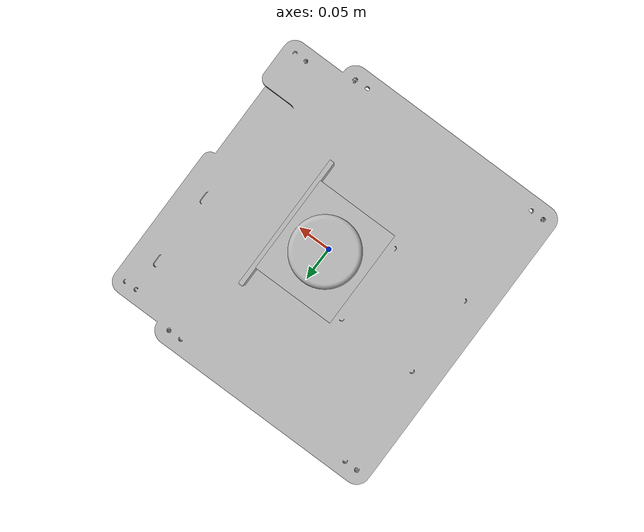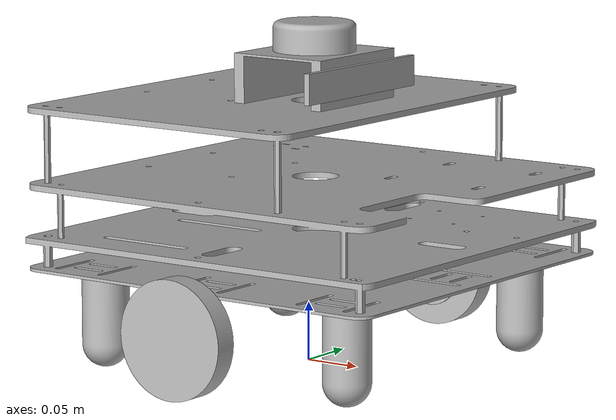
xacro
<?xml version="1.0" ?>
<robot name="testbed_v5" xmlns:xacro="http://www.ros.org/wiki/xacro">

<xacro:include filename="$(find testbed_v5_description)/urdf/materials.xacro" />
<xacro:include filename="$(find testbed_v5_description)/urdf/testbed_v5.trans" />
<xacro:include filename="$(find testbed_v5_description)/urdf/testbed_v5.gazebo" />
<xacro:include filename="$(find testbed_v5_description)/urdf/testbed_v5_plugins.gazebo" />

<link name="base_link">
  <inertial>
    <origin xyz="-0.009417108194433796 0.007391324547363638 0.1456606164886188" rpy="0 0 0"/>
    <mass value="5.234348580602515"/>

    <inertia ixx="0.067679" iyy="0.06101" izz="0.104014" ixy="-0.000698" iyz="5.6e-05" ixz="0.003912"/>

  </inertial>
  <visual>
    <origin xyz="0 0 0" rpy="0 0 0"/>
    <geometry>
      <mesh filename="package://testbed_v5_description/meshes/base_link.stl" scale="0.001 0.001 0.001"/>
    </geometry>
    <material name="silver"/>
  </visual>
  <collision>
    <origin xyz="0 0 0" rpy="0 0 0"/>
    <geometry>
      <mesh filename="package://testbed_v5_description/meshes/base_link.stl" scale="0.001 0.001 0.001"/>
    </geometry>
  </collision>
</link>

<link name="camera_1">
  <inertial>
    <origin xyz="0.002500497082887458 -1.5695143071488282e-07 1.4622628566329787e-07" rpy="0 0 0"/>
    <mass value="0.02683089777381168"/>
    <inertia ixx="5.2e-05" iyy="2e-06" izz="5e-05" ixy="-0.0" iyz="0.0" ixz="0.0"/>
  </inertial>
  <visual>
    <origin xyz="-0.046628 -0.00577 -0.243503" rpy="0 0 0"/>
    <geometry>
      <mesh filename="package://testbed_v5_description/meshes/camera_1.stl" scale="0.001 0.001 0.001"/>
    </geometry>
    <material name="silver"/>
  </visual>
  <collision>
    <origin xyz="-0.046628 -0.00577 -0.243503" rpy="0 0 0"/>
    <geometry>
      <mesh filename="package://testbed_v5_description/meshes/camera_1.stl" scale="0.001 0.001 0.001"/>
    </geometry>
  </collision>
</link>

<link name="lidar_1">
  <inertial>
    <origin xyz="2.6024096270072135e-07 -1.5695143085713015e-07 0.012363569052544154" rpy="0 0 0"/>
    <mass value="0.13119534142939002"/>
    <inertia ixx="4.6e-05" iyy="4.6e-05" izz="8e-05" ixy="-0.0" iyz="0.0" ixz="0.0"/>
  </inertial>
  <visual>
    <origin xyz="-0.001943 -0.00577 -0.264503" rpy="0 0 0"/>
    <geometry>
      <mesh filename="package://testbed_v5_description/meshes/lidar_1.stl" scale="0.001 0.001 0.001"/>
    </geometry>
    <material name="silver"/>
  </visual>
  <collision>
    <origin xyz="-0.001943 -0.00577 -0.264503" rpy="0 0 0"/>
    <geometry>
      <mesh filename="package://testbed_v5_description/meshes/lidar_1.stl" scale="0.001 0.001 0.001"/>
    </geometry>
  </collision>
</link>

<link name="top_stand_1">
  <inertial>
    <origin xyz="0.03967798450114855 -1.3551081426969001e-05 0.023834533396327046" rpy="0 0 0"/>
    <mass value="0.2768438331116585"/>
    <inertia ixx="0.000302" iyy="0.00044" izz="0.000645" ixy="0.0" iyz="0.0" ixz="-0.0"/>
  </inertial>
  <visual>
    <origin xyz="0.037742 -0.005793 -0.222503" rpy="0 0 0"/>
    <geometry>
      <mesh filename="package://testbed_v5_description/meshes/top_stand_1.stl" scale="0.001 0.001 0.001"/>
    </geometry>
    <material name="silver"/>
  </visual>
  <collision>
    <origin xyz="0.037742 -0.005793 -0.222503" rpy="0 0 0"/>
    <geometry>
      <mesh filename="package://testbed_v5_description/meshes/top_stand_1.stl" scale="0.001 0.001 0.001"/>
    </geometry>
  </collision>
</link>

<link name="left_wheel_1">
  <inertial>
    <origin xyz="4.820423154623318e-07 0.014930421756785828 1.462262926854585e-07" rpy="0 0 0"/>
    <mass value="0.14690578122037995"/>
    <inertia ixx="9.6e-05" iyy="0.000183" izz="9.6e-05" ixy="-0.0" iyz="0.0" ixz="-0.0"/>
  </inertial>
  <visual>
    <origin xyz="-0.00203 -0.178793 -0.050003" rpy="0 0 0"/>
    <geometry>
      <mesh filename="package://testbed_v5_description/meshes/left_wheel_1.stl" scale="0.001 0.001 0.001"/>
    </geometry>
    <material name="silver"/>
  </visual>
  <collision>
    <origin xyz="-0.00203 -0.178793 -0.050003" rpy="0 0 0"/>
    <geometry>
      <mesh filename="package://testbed_v5_description/meshes/left_wheel_1.stl" scale="0.001 0.001 0.001"/>
    </geometry>
  </collision>
</link>

<link name="right_wheel_1">
  <inertial>
    <origin xyz="4.82042336067811e-07 -0.014929739834248806 1.4622628940336169e-07" rpy="0 0 0"/>
    <mass value="0.14690578122037973"/>
    <inertia ixx="9.6e-05" iyy="0.000183" izz="9.6e-05" ixy="-0.0" iyz="0.0" ixz="-0.0"/>
  </inertial>
  <visual>
    <origin xyz="-0.00203 0.167207 -0.050003" rpy="0 0 0"/>
    <geometry>
      <mesh filename="package://testbed_v5_description/meshes/right_wheel_1.stl" scale="0.001 0.001 0.001"/>
    </geometry>
    <material name="silver"/>
  </visual>
  <collision>
    <origin xyz="-0.00203 0.167207 -0.050003" rpy="0 0 0"/>
    <geometry>
      <mesh filename="package://testbed_v5_description/meshes/right_wheel_1.stl" scale="0.001 0.001 0.001"/>
    </geometry>
  </collision>
</link>

<link name="front_caster_2">
  <inertial>
    <origin xyz="2.3399034404514296e-08 3.409612755883584e-07 -0.038760384632581794" rpy="0 0 0"/>
    <mass value="0.8239907441912069"/>
    <inertia ixx="0.000498" iyy="0.000498" izz="0.000159" ixy="-0.0" iyz="0.0" ixz="-0.0"/>
  </inertial>
  <visual>
    <origin xyz="-0.127258 0.121257 -0.084003" rpy="0 0 0"/>
    <geometry>
      <mesh filename="package://testbed_v5_description/meshes/front_caster_2.stl" scale="0.001 0.001 0.001"/>
    </geometry>
    <material name="silver"/>
  </visual>
  <collision>
    <origin xyz="-0.127258 0.121257 -0.084003" rpy="0 0 0"/>
    <geometry>
      <mesh filename="package://testbed_v5_description/meshes/front_caster_2.stl" scale="0.001 0.001 0.001"/>
    </geometry>
  </collision>
</link>

<link name="front_caster_1">
  <inertial>
    <origin xyz="2.3399032877957637e-08 3.409612712723664e-07 -0.038760384632579574" rpy="0 0 0"/>
    <mass value="0.8239907441912069"/>
    <inertia ixx="0.000498" iyy="0.000498" izz="0.000159" ixy="-0.0" iyz="-0.0" ixz="-0.0"/>
  </inertial>
  <visual>
    <origin xyz="-0.127258 -0.132843 -0.084003" rpy="0 0 0"/>
    <geometry>
      <mesh filename="package://testbed_v5_description/meshes/front_caster_1.stl" scale="0.001 0.001 0.001"/>
    </geometry>
    <material name="silver"/>
  </visual>
  <collision>
    <origin xyz="-0.127258 -0.132843 -0.084003" rpy="0 0 0"/>
    <geometry>
      <mesh filename="package://testbed_v5_description/meshes/front_caster_1.stl" scale="0.001 0.001 0.001"/>
    </geometry>
  </collision>
</link>

<link name="back_caster_1">
  <inertial>
    <origin xyz="2.3399038776017456e-08 3.4096127132787757e-07 -0.038760384632579255" rpy="0 0 0"/>
    <mass value="0.8239907441912067"/>
    <inertia ixx="0.000498" iyy="0.000498" izz="0.000159" ixy="-0.0" iyz="0.0" ixz="-0.0"/>
  </inertial>
  <visual>
    <origin xyz="0.122742 -0.132843 -0.084003" rpy="0 0 0"/>
    <geometry>
      <mesh filename="package://testbed_v5_description/meshes/back_caster_1.stl" scale="0.001 0.001 0.001"/>
    </geometry>
    <material name="silver"/>
  </visual>
  <collision>
    <origin xyz="0.122742 -0.132843 -0.084003" rpy="0 0 0"/>
    <geometry>
      <mesh filename="package://testbed_v5_description/meshes/back_caster_1.stl" scale="0.001 0.001 0.001"/>
    </geometry>
  </collision>
</link>

<link name="back_caster_2">
  <inertial>
    <origin xyz="2.3399040469107568e-08 3.4096127535243603e-07 -0.0387603846325812" rpy="0 0 0"/>
    <mass value="0.8239907441912067"/>
    <inertia ixx="0.000498" iyy="0.000498" izz="0.000159" ixy="-0.0" iyz="0.0" ixz="-0.0"/>
  </inertial>
  <visual>
    <origin xyz="0.122742 0.121257 -0.084003" rpy="0 0 0"/>
    <geometry>
      <mesh filename="package://testbed_v5_description/meshes/back_caster_2.stl" scale="0.001 0.001 0.001"/>
    </geometry>
    <material name="silver"/>
  </visual>
  <collision>
    <origin xyz="0.122742 0.121257 -0.084003" rpy="0 0 0"/>
    <geometry>
      <mesh filename="package://testbed_v5_description/meshes/back_caster_2.stl" scale="0.001 0.001 0.001"/>
    </geometry>
  </collision>
</link>

<joint name="Rigid 46" type="fixed">
  <origin xyz="0.08437 -2.3e-05 0.021" rpy="0 0 0"/>
  <parent link="top_stand_1"/>
  <child link="camera_1"/>
</joint>

<joint name="Rigid 47" type="fixed">
  <origin xyz="0.039685 -2.3e-05 0.042" rpy="0 0 0"/>
  <parent link="top_stand_1"/>
  <child link="lidar_1"/>
</joint>

<joint name="Rigid 48" type="fixed">
  <origin xyz="-0.037742 0.005793 0.222503" rpy="0 0 0"/>
  <parent link="base_link"/>
  <child link="top_stand_1"/>
</joint>

<joint name="left_wheel_joint" type="continuous">
  <origin xyz="0.00203 0.178793 0.050003" rpy="0 0 0"/>
  <parent link="base_link"/>
  <child link="left_wheel_1"/>
  <axis xyz="0.0 1.0 0.0"/>
</joint>

<joint name="right_wheel_joint" type="continuous">
  <origin xyz="0.00203 -0.167207 0.050003" rpy="0 0 0"/>
  <parent link="base_link"/>
  <child link="right_wheel_1"/>
  <axis xyz="0.0 1.0 0.0"/>
</joint>

<joint name="Rigid 53" type="fixed">
  <origin xyz="0.127258 -0.121257 0.084003" rpy="0 0 0"/>
  <parent link="base_link"/>
  <child link="front_caster_2"/>
</joint>

<joint name="Rigid 54" type="fixed">
  <origin xyz="0.127258 0.132843 0.084003" rpy="0 0 0"/>
  <parent link="base_link"/>
  <child link="front_caster_1"/>
</joint>

<joint name="Rigid 55" type="fixed">
  <origin xyz="-0.122742 0.132843 0.084003" rpy="0 0 0"/>
  <parent link="base_link"/>
  <child link="back_caster_1"/>
</joint>

<joint name="Rigid 56" type="fixed">
  <origin xyz="-0.122742 -0.121257 0.084003" rpy="0 0 0"/>
  <parent link="base_link"/>
  <child link="back_caster_2"/>
</joint>

</robot>

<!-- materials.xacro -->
<robot name="testbed_v5" xmlns:xacro="http://www.ros.org/wiki/xacro" >

<material name="silver">
  <color rgba="0.700 0.700 0.700 1.000"/>
</material>

</robot>

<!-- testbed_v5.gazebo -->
<robot name="testbed_v5" xmlns:xacro="http://www.ros.org/wiki/xacro" >

<xacro:property name="body_color" value="Gazebo/Grey" />
<xacro:property name="wheel_color" value="Gazebo/DarkGrey" />
<xacro:property name="lidar_color" value="Gazebo/Red" />
<xacro:property name="camera_color" value="Gazebo/Blue" />

<gazebo>
  <plugin name="control" filename="libgazebo_ros_control.so"/>
</gazebo>

<gazebo reference="base_link">
  <material>${body_color}</material>
  <mu1>0.2</mu1>
  <mu2>0.2</mu2>
  <selfCollide>true</selfCollide>
  <gravity>true</gravity>
</gazebo>

<gazebo reference="camera_1">
  <material>${camera_color}</material>
  <mu1>0.2</mu1>
  <mu2>0.2</mu2>
  <selfCollide>true</selfCollide>
</gazebo>

<gazebo reference="lidar_1">
  <material>${lidar_color}</material>
  <mu1>0.2</mu1>
  <mu2>0.2</mu2>
  <selfCollide>true</selfCollide>
</gazebo>

<gazebo reference="top_stand_1">
  <material>${body_color}</material>
  <mu1>0.2</mu1>
  <mu2>0.2</mu2>
  <selfCollide>true</selfCollide>
</gazebo>

<gazebo reference="left_wheel_1">
  <material>${wheel_color}</material>
  <mu1>0.2</mu1>
  <mu2>0.2</mu2>
  <selfCollide>true</selfCollide>
</gazebo>

<gazebo reference="right_wheel_1">
  <material>${wheel_color}</material>
  <mu1>0.2</mu1>
  <mu2>0.2</mu2>
  <selfCollide>true</selfCollide>
</gazebo>

<gazebo reference="front_caster_2">
  <material>${body_color}</material>
  <mu1>0.2</mu1>
  <mu2>0.2</mu2>
  <selfCollide>true</selfCollide>
</gazebo>

<gazebo reference="front_caster_1">
  <material>${body_color}</material>
  <mu1>0.2</mu1>
  <mu2>0.2</mu2>
  <selfCollide>true</selfCollide>
</gazebo>

<gazebo reference="back_caster_1">
  <material>${body_color}</material>
  <mu1>0.2</mu1>
  <mu2>0.2</mu2>
  <selfCollide>true</selfCollide>
</gazebo>

<gazebo reference="back_caster_2">
  <material>${body_color}</material>
  <mu1>0.2</mu1>
  <mu2>0.2</mu2>
  <selfCollide>true</selfCollide>
</gazebo>

</robot>
